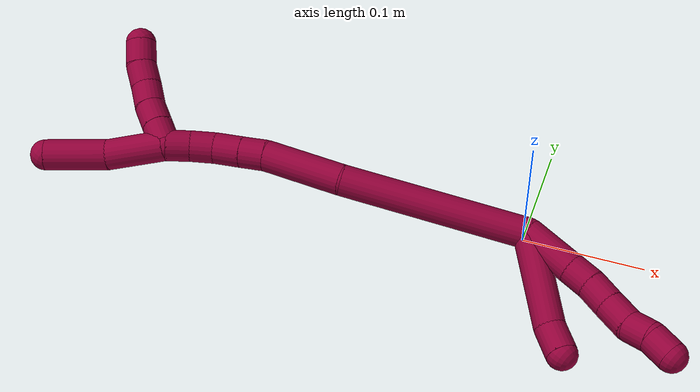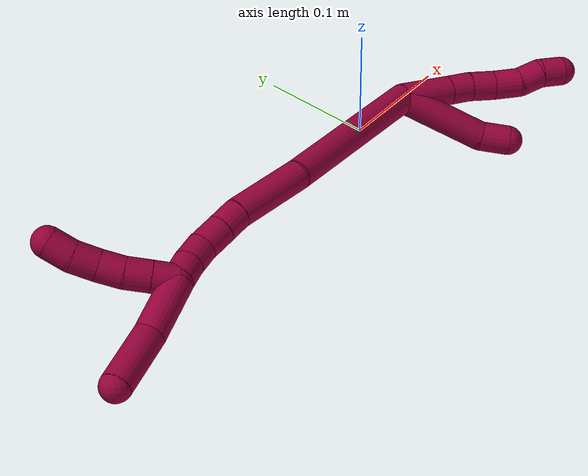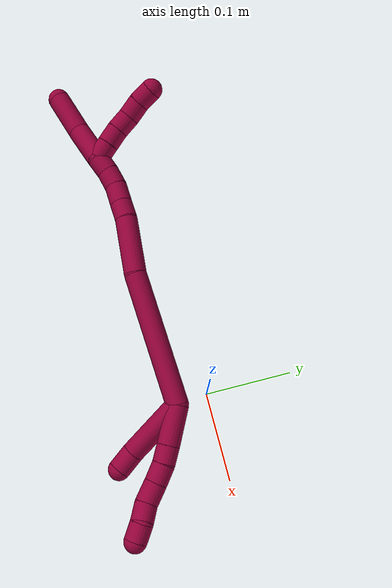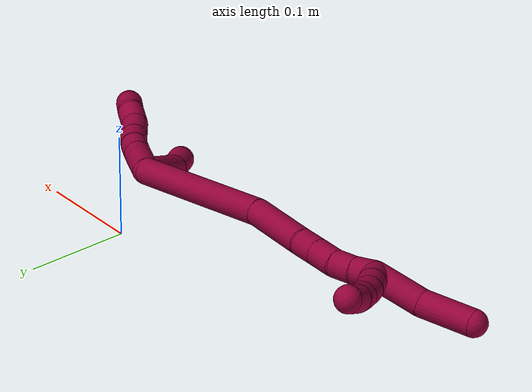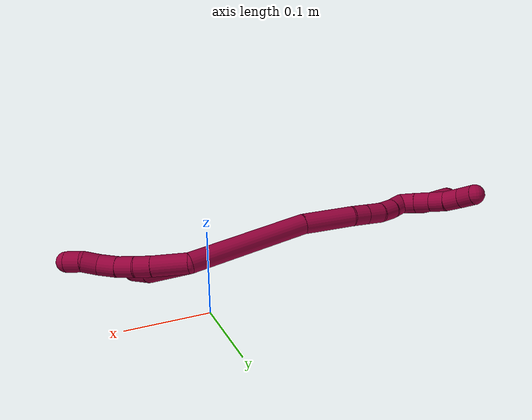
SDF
<sdf version="1.7">
 <world name="default">
  <model name="photoneo_s_sensor">
   <static>1</static>
   <pose>0 0 2 1.57079 1.57079 3.14159</pose>
   <link name="link">
    <inertial><mass>0.1</mass></inertial>
    <sensor name="sensor" type="depth">
     <update_rate>30</update_rate>
     <camera>
      <horizontal_fov>1.22</horizontal_fov>
      <image><width>1920</width><height>1200</height><format>B8G8R8</format></image>
      <clip><near>0.1</near><far>4</far></clip>
      <depth_camera><output>points</output></depth_camera>
     </camera>
     <plugin name="camera_plugin" filename="libgazebo_ros_depth_camera.so">
      <baseline>0.2</baseline>
      <alwaysOn>1</alwaysOn>
      <updateRate>0.0</updateRate>
      <cameraName>camera_ir</cameraName>
      <imageTopicName>/camera/color/image_raw</imageTopicName>
      <cameraInfoTopicName>/camera/color/camera_info</cameraInfoTopicName>
      <depthImageTopicName>/camera/depth/image_raw</depthImageTopicName>
      <depthImageCameraInfoTopicName>/camera/depth/camera_info</depthImageCameraInfoTopicName>
      <pointCloudTopicName>/camera/depth/points</pointCloudTopicName>
      <frameName>fr_optical</frameName>
      <pointCloudCutoff>0.1</pointCloudCutoff>
      <pointCloudCutoffMax>2.0</pointCloudCutoffMax>
      <distortionK1>0</distortionK1>
      <distortionK2>0</distortionK2>
      <distortionK3>0</distortionK3>
      <distortionT1>0</distortionT1>
      <distortionT2>0</distortionT2>
      <CxPrime>0</CxPrime>
      <Cx>0</Cx>
      <Cy>0</Cy>
      <focalLength>0</focalLength>
      <hackBaseline>0</hackBaseline>
     </plugin>
    </sensor>
   </link>
  </model>
  <model name="bin">
   <static>1</static>
   <link name="bottom">
    <collision name="collision-bottom">
     <pose>0 0 -0.01 0 -0 0</pose>
     <geometry><box><size>0.8 0.6 0.02</size></box></geometry>
     <surface>
      <friction><ode><mu>100</mu><mu2>100</mu2></ode></friction>
      <contact><collide_bitmask>65535</collide_bitmask></contact>
     </surface>
    </collision>
   </link>
   <link name="west_wall">
    <collision name="collision-west_wall">
     <pose>-0.41 0 0.1 0 -0 0</pose>
     <geometry><box><size>0.02 0.6 0.2</size></box></geometry>
     <surface>
      <friction><ode><mu>100</mu><mu2>100</mu2></ode></friction>
      <contact><collide_bitmask>65535</collide_bitmask></contact>
     </surface>
    </collision>
   </link>
   <link name="east_wall">
    <collision name="collision-east_wall">
     <pose>0.41 0 0.1 0 -0 0</pose>
     <geometry><box><size>0.02 0.6 0.2</size></box></geometry>
     <surface>
      <friction><ode><mu>100</mu><mu2>100</mu2></ode></friction>
      <contact><collide_bitmask>65535</collide_bitmask></contact>
     </surface>
    </collision>
   </link>
   <link name="south_wall">
    <collision name="collision-south_wall">
     <pose>0 -0.31 0.1 0 -0 0</pose>
     <geometry><box><size>0.8 0.02 0.2</size></box></geometry>
     <surface>
      <friction><ode><mu>100</mu><mu2>100</mu2></ode></friction>
      <contact><collide_bitmask>65535</collide_bitmask></contact>
     </surface>
    </collision>
   </link>
   <link name="north_wall">
    <collision name="collision-north_wall">
     <pose>0 0.31 0.1 0 -0 0</pose>
     <geometry><box><size>0.8 0.02 0.2</size></box></geometry>
     <surface>
      <friction><ode><mu>100</mu><mu2>100</mu2></ode></friction>
      <contact><collide_bitmask>65535</collide_bitmask></contact>
     </surface>
    </collision>
   </link>
  </model>
  <model name="8">
   <static>0</static>
   <link name="8">
    <collision name="collision-cylinder-e_1_2_8">
     <pose>6.5e-05 -0.000303 -0.02214 3.12789 0.002946 0.423393</pose>
     <geometry><cylinder><radius>0.0125</radius><length>0.044284</length></cylinder></geometry>
     <surface>
      <friction><ode><mu>1.16</mu><mu2>1.16</mu2><slip1>0</slip1><slip2>0</slip2></ode></friction>
      <contact><ode><kp>1e+06</kp><kd>1</kd><max_vel>0</max_vel><min_depth>0.001</min_depth></ode></contact>
     </surface>
    </collision>
    <visual name="visual-cylinder-e_1_2_8">
     <pose>6.5e-05 -0.000303 -0.02214 3.12789 0.002946 0.423393</pose>
     <geometry><cylinder><radius>0.0125</radius><length>0.044284</length></cylinder></geometry>
     <material><ambient>0.584314 0 0.227451 1</ambient></material>
    </visual>
    <collision name="collision-cylinder-e_2_8_9">
     <pose>-1.1e-05 -0.001203 -0.054267 3.08196 -0.014095 -0.464131</pose>
     <geometry><cylinder><radius>0.0125</radius><length>0.020012</length></cylinder></geometry>
     <surface>
      <friction><ode><mu>1.16</mu><mu2>1.16</mu2><slip1>0</slip1><slip2>0</slip2></ode></friction>
      <contact><ode><kp>1e+06</kp><kd>1</kd><max_vel>0</max_vel><min_depth>0.001</min_depth></ode></contact>
     </surface>
    </collision>
    <visual name="visual-cylinder-e_2_8_9">
     <pose>-1.1e-05 -0.001203 -0.054267 3.08196 -0.014095 -0.464131</pose>
     <geometry><cylinder><radius>0.0125</radius><length>0.020012</length></cylinder></geometry>
     <material><ambient>0.584314 0 0.227451 1</ambient></material>
    </visual>
    <collision name="collision-cylinder-e_3_9_10">
     <pose>-0.001975 -0.002429 -0.074928 3.08268 -0.168942 -2.47179</pose>
     <geometry><cylinder><radius>0.0125</radius><length>0.021694</length></cylinder></geometry>
     <surface>
      <friction><ode><mu>1.16</mu><mu2>1.16</mu2><slip1>0</slip1><slip2>0</slip2></ode></friction>
      <contact><ode><kp>1e+06</kp><kd>1</kd><max_vel>0</max_vel><min_depth>0.001</min_depth></ode></contact>
     </surface>
    </collision>
    <visual name="visual-cylinder-e_3_9_10">
     <pose>-0.001975 -0.002429 -0.074928 3.08268 -0.168942 -2.47179</pose>
     <geometry><cylinder><radius>0.0125</radius><length>0.021694</length></cylinder></geometry>
     <material><ambient>0.584314 0 0.227451 1</ambient></material>
    </visual>
    <collision name="collision-cylinder-e_4_10_11">
     <pose>-0.005921 -0.005032 -0.097124 2.97195 -0.179593 -1.62806</pose>
     <geometry><cylinder><radius>0.0125</radius><length>0.023761</length></cylinder></geometry>
     <surface>
      <friction><ode><mu>1.16</mu><mu2>1.16</mu2><slip1>0</slip1><slip2>0</slip2></ode></friction>
      <contact><ode><kp>1e+06</kp><kd>1</kd><max_vel>0</max_vel><min_depth>0.001</min_depth></ode></contact>
     </surface>
    </collision>
    <visual name="visual-cylinder-e_4_10_11">
     <pose>-0.005921 -0.005032 -0.097124 2.97195 -0.179593 -1.62806</pose>
     <geometry><cylinder><radius>0.0125</radius><length>0.023761</length></cylinder></geometry>
     <material><ambient>0.584314 0 0.227451 1</ambient></material>
    </visual>
    <collision name="collision-cylinder-e_5_11_12">
     <pose>-0.007237 -0.010106 -0.118229 2.82873 0.079916 0.496514</pose>
     <geometry><cylinder><radius>0.0125</radius><length>0.020211</length></cylinder></geometry>
     <surface>
      <friction><ode><mu>1.16</mu><mu2>1.16</mu2><slip1>0</slip1><slip2>0</slip2></ode></friction>
      <contact><ode><kp>1e+06</kp><kd>1</kd><max_vel>0</max_vel><min_depth>0.001</min_depth></ode></contact>
     </surface>
    </collision>
    <visual name="visual-cylinder-e_5_11_12">
     <pose>-0.007237 -0.010106 -0.118229 2.82873 0.079916 0.496514</pose>
     <geometry><cylinder><radius>0.0125</radius><length>0.020211</length></cylinder></geometry>
     <material><ambient>0.584314 0 0.227451 1</ambient></material>
    </visual>
    <collision name="collision-cylinder-e_6_12_6">
     <pose>-0.007421 -0.013765 -0.137768 3.08549 -0.099065 -2.11151</pose>
     <geometry><cylinder><radius>0.0125</radius><length>0.020038</length></cylinder></geometry>
     <surface>
      <friction><ode><mu>1.16</mu><mu2>1.16</mu2><slip1>0</slip1><slip2>0</slip2></ode></friction>
      <contact><ode><kp>1e+06</kp><kd>1</kd><max_vel>0</max_vel><min_depth>0.001</min_depth></ode></contact>
     </surface>
    </collision>
    <visual name="visual-cylinder-e_6_12_6">
     <pose>-0.007421 -0.013765 -0.137768 3.08549 -0.099065 -2.11151</pose>
     <geometry><cylinder><radius>0.0125</radius><length>0.020038</length></cylinder></geometry>
     <material><ambient>0.584314 0 0.227451 1</ambient></material>
    </visual>
    <collision name="collision-cylinder-e_1_2_13">
     <pose>-0.020732 0.007747 -0.03052 -2.89301 -0.582272 2.35154</pose>
     <geometry><cylinder><radius>0.0125</radius><length>0.0754</length></cylinder></geometry>
     <surface>
      <friction><ode><mu>1.16</mu><mu2>1.16</mu2><slip1>0</slip1><slip2>0</slip2></ode></friction>
      <contact><ode><kp>1e+06</kp><kd>1</kd><max_vel>0</max_vel><min_depth>0.001</min_depth></ode></contact>
     </surface>
    </collision>
    <visual name="visual-cylinder-e_1_2_13">
     <pose>-0.020732 0.007747 -0.03052 -2.89301 -0.582272 2.35154</pose>
     <geometry><cylinder><radius>0.0125</radius><length>0.0754</length></cylinder></geometry>
     <material><ambient>0.584314 0 0.227451 1</ambient></material>
    </visual>
    <collision name="collision-cylinder-e_2_13_5">
     <pose>-0.046882 0.014634 -0.072048 3.06359 -0.45611 -2.80847</pose>
     <geometry><cylinder><radius>0.0125</radius><length>0.0246</length></cylinder></geometry>
     <surface>
      <friction><ode><mu>1.16</mu><mu2>1.16</mu2><slip1>0</slip1><slip2>0</slip2></ode></friction>
      <contact><ode><kp>1e+06</kp><kd>1</kd><max_vel>0</max_vel><min_depth>0.001</min_depth></ode></contact>
     </surface>
    </collision>
    <visual name="visual-cylinder-e_2_13_5">
     <pose>-0.046882 0.014634 -0.072048 3.06359 -0.45611 -2.80847</pose>
     <geometry><cylinder><radius>0.0125</radius><length>0.0246</length></cylinder></geometry>
     <material><ambient>0.584314 0 0.227451 1</ambient></material>
    </visual>
    <collision name="collision-cylinder-e_1_2_14">
     <pose>-0.037244 -0.009616 0.06502 0.146829 -0.515528 -0.038773</pose>
     <geometry><cylinder><radius>0.0125</radius><length>0.151092</length></cylinder></geometry>
     <surface>
      <friction><ode><mu>1.16</mu><mu2>1.16</mu2><slip1>0</slip1><slip2>0</slip2></ode></friction>
      <contact><ode><kp>1e+06</kp><kd>1</kd><max_vel>0</max_vel><min_depth>0.001</min_depth></ode></contact>
     </surface>
    </collision>
    <visual name="visual-cylinder-e_1_2_14">
     <pose>-0.037244 -0.009616 0.06502 0.146829 -0.515528 -0.038773</pose>
     <geometry><cylinder><radius>0.0125</radius><length>0.151092</length></cylinder></geometry>
     <material><ambient>0.584314 0 0.227451 1</ambient></material>
    </visual>
    <collision name="collision-cylinder-e_2_14_15">
     <pose>-0.087453 -0.018808 0.160066 -0.014112 -0.407603 0.002917</pose>
     <geometry><cylinder><radius>0.0125</radius><length>0.065415</length></cylinder></geometry>
     <surface>
      <friction><ode><mu>1.16</mu><mu2>1.16</mu2><slip1>0</slip1><slip2>0</slip2></ode></friction>
      <contact><ode><kp>1e+06</kp><kd>1</kd><max_vel>0</max_vel><min_depth>0.001</min_depth></ode></contact>
     </surface>
    </collision>
    <visual name="visual-cylinder-e_2_14_15">
     <pose>-0.087453 -0.018808 0.160066 -0.014112 -0.407603 0.002917</pose>
     <geometry><cylinder><radius>0.0125</radius><length>0.065415</length></cylinder></geometry>
     <material><ambient>0.584314 0 0.227451 1</ambient></material>
    </visual>
    <collision name="collision-cylinder-e_3_15_16">
     <pose>-0.105812 -0.017708 0.198651 -0.078926 -0.560838 0.022742</pose>
     <geometry><cylinder><radius>0.0125</radius><length>0.02028</length></cylinder></geometry>
     <surface>
      <friction><ode><mu>1.16</mu><mu2>1.16</mu2><slip1>0</slip1><slip2>0</slip2></ode></friction>
      <contact><ode><kp>1e+06</kp><kd>1</kd><max_vel>0</max_vel><min_depth>0.001</min_depth></ode></contact>
     </surface>
    </collision>
    <visual name="visual-cylinder-e_3_15_16">
     <pose>-0.105812 -0.017708 0.198651 -0.078926 -0.560838 0.022742</pose>
     <geometry><cylinder><radius>0.0125</radius><length>0.02028</length></cylinder></geometry>
     <material><ambient>0.584314 0 0.227451 1</ambient></material>
    </visual>
    <collision name="collision-cylinder-e_4_16_17">
     <pose>-0.117142 -0.016241 0.216868 -0.081563 -0.549704 0.023011</pose>
     <geometry><cylinder><radius>0.0125</radius><length>0.022727</length></cylinder></geometry>
     <surface>
      <friction><ode><mu>1.16</mu><mu2>1.16</mu2><slip1>0</slip1><slip2>0</slip2></ode></friction>
      <contact><ode><kp>1e+06</kp><kd>1</kd><max_vel>0</max_vel><min_depth>0.001</min_depth></ode></contact>
     </surface>
    </collision>
    <visual name="visual-cylinder-e_4_16_17">
     <pose>-0.117142 -0.016241 0.216868 -0.081563 -0.549704 0.023011</pose>
     <geometry><cylinder><radius>0.0125</radius><length>0.022727</length></cylinder></geometry>
     <material><ambient>0.584314 0 0.227451 1</ambient></material>
    </visual>
    <collision name="collision-cylinder-e_5_17_18">
     <pose>-0.129696 -0.016075 0.234204 0.081 -0.709647 -0.030025</pose>
     <geometry><cylinder><radius>0.0125</radius><length>0.020311</length></cylinder></geometry>
     <surface>
      <friction><ode><mu>1.16</mu><mu2>1.16</mu2><slip1>0</slip1><slip2>0</slip2></ode></friction>
      <contact><ode><kp>1e+06</kp><kd>1</kd><max_vel>0</max_vel><min_depth>0.001</min_depth></ode></contact>
     </surface>
    </collision>
    <visual name="visual-cylinder-e_5_17_18">
     <pose>-0.129696 -0.016075 0.234204 0.081 -0.709647 -0.030025</pose>
     <geometry><cylinder><radius>0.0125</radius><length>0.020311</length></cylinder></geometry>
     <material><ambient>0.584314 0 0.227451 1</ambient></material>
    </visual>
    <collision name="collision-cylinder-e_6_18_1">
     <pose>-0.143687 -0.018267 0.248585 0.229841 -0.81974 -0.100219</pose>
     <geometry><cylinder><radius>0.0125</radius><length>0.020174</length></cylinder></geometry>
     <surface>
      <friction><ode><mu>1.16</mu><mu2>1.16</mu2><slip1>0</slip1><slip2>0</slip2></ode></friction>
      <contact><ode><kp>1e+06</kp><kd>1</kd><max_vel>0</max_vel><min_depth>0.001</min_depth></ode></contact>
     </surface>
    </collision>
    <visual name="visual-cylinder-e_6_18_1">
     <pose>-0.143687 -0.018267 0.248585 0.229841 -0.81974 -0.100219</pose>
     <geometry><cylinder><radius>0.0125</radius><length>0.020174</length></cylinder></geometry>
     <material><ambient>0.584314 0 0.227451 1</ambient></material>
    </visual>
    <collision name="collision-cylinder-e_1_1_19">
     <pose>-0.147233 -0.020043 0.264524 0.022479 0.392673 0.004471</pose>
     <geometry><cylinder><radius>0.0125</radius><length>0.02</length></cylinder></geometry>
     <surface>
      <friction><ode><mu>1.16</mu><mu2>1.16</mu2><slip1>0</slip1><slip2>0</slip2></ode></friction>
      <contact><ode><kp>1e+06</kp><kd>1</kd><max_vel>0</max_vel><min_depth>0.001</min_depth></ode></contact>
     </surface>
    </collision>
    <visual name="visual-cylinder-e_1_1_19">
     <pose>-0.147233 -0.020043 0.264524 0.022479 0.392673 0.004471</pose>
     <geometry><cylinder><radius>0.0125</radius><length>0.02</length></cylinder></geometry>
     <material><ambient>0.584314 0 0.227451 1</ambient></material>
    </visual>
    <collision name="collision-cylinder-e_2_19_20">
     <pose>-0.139589 -0.020266 0.283003 0.001714 0.391725 0.00034</pose>
     <geometry><cylinder><radius>0.0125</radius><length>0.02</length></cylinder></geometry>
     <surface>
      <friction><ode><mu>1.16</mu><mu2>1.16</mu2><slip1>0</slip1><slip2>0</slip2></ode></friction>
      <contact><ode><kp>1e+06</kp><kd>1</kd><max_vel>0</max_vel><min_depth>0.001</min_depth></ode></contact>
     </surface>
    </collision>
    <visual name="visual-cylinder-e_2_19_20">
     <pose>-0.139589 -0.020266 0.283003 0.001714 0.391725 0.00034</pose>
     <geometry><cylinder><radius>0.0125</radius><length>0.02</length></cylinder></geometry>
     <material><ambient>0.584314 0 0.227451 1</ambient></material>
    </visual>
    <collision name="collision-cylinder-e_3_20_21">
     <pose>-0.130634 -0.02061 0.300819 0.038246 0.53948 0.010575</pose>
     <geometry><cylinder><radius>0.0125</radius><length>0.02</length></cylinder></geometry>
     <surface>
      <friction><ode><mu>1.16</mu><mu2>1.16</mu2><slip1>0</slip1><slip2>0</slip2></ode></friction>
      <contact><ode><kp>1e+06</kp><kd>1</kd><max_vel>0</max_vel><min_depth>0.001</min_depth></ode></contact>
     </surface>
    </collision>
    <visual name="visual-cylinder-e_3_20_21">
     <pose>-0.130634 -0.02061 0.300819 0.038246 0.53948 0.010575</pose>
     <geometry><cylinder><radius>0.0125</radius><length>0.02</length></cylinder></geometry>
     <material><ambient>0.584314 0 0.227451 1</ambient></material>
    </visual>
    <collision name="collision-cylinder-e_4_21_22">
     <pose>-0.12073 -0.022735 0.317998 0.205802 0.496914 0.052385</pose>
     <geometry><cylinder><radius>0.0125</radius><length>0.02</length></cylinder></geometry>
     <surface>
      <friction><ode><mu>1.16</mu><mu2>1.16</mu2><slip1>0</slip1><slip2>0</slip2></ode></friction>
      <contact><ode><kp>1e+06</kp><kd>1</kd><max_vel>0</max_vel><min_depth>0.001</min_depth></ode></contact>
     </surface>
    </collision>
    <visual name="visual-cylinder-e_4_21_22">
     <pose>-0.12073 -0.022735 0.317998 0.205802 0.496914 0.052385</pose>
     <geometry><cylinder><radius>0.0125</radius><length>0.02</length></cylinder></geometry>
     <material><ambient>0.584314 0 0.227451 1</ambient></material>
    </visual>
    <collision name="collision-cylinder-e_5_22_4">
     <pose>-0.109532 -0.026675 0.333954 0.283818 0.698503 0.103967</pose>
     <geometry><cylinder><radius>0.0125</radius><length>0.02</length></cylinder></geometry>
     <surface>
      <friction><ode><mu>1.16</mu><mu2>1.16</mu2><slip1>0</slip1><slip2>0</slip2></ode></friction>
      <contact><ode><kp>1e+06</kp><kd>1</kd><max_vel>0</max_vel><min_depth>0.001</min_depth></ode></contact>
     </surface>
    </collision>
    <visual name="visual-cylinder-e_5_22_4">
     <pose>-0.109532 -0.026675 0.333954 0.283818 0.698503 0.103967</pose>
     <geometry><cylinder><radius>0.0125</radius><length>0.02</length></cylinder></geometry>
     <material><ambient>0.584314 0 0.227451 1</ambient></material>
    </visual>
    <collision name="collision-cylinder-e_1_1_23">
     <pose>-0.168828 -0.015435 0.271384 -0.266816 -0.816754 0.116011</pose>
     <geometry><cylinder><radius>0.0125</radius><length>0.04875</length></cylinder></geometry>
     <surface>
      <friction><ode><mu>1.16</mu><mu2>1.16</mu2><slip1>0</slip1><slip2>0</slip2></ode></friction>
      <contact><ode><kp>1e+06</kp><kd>1</kd><max_vel>0</max_vel><min_depth>0.001</min_depth></ode></contact>
     </surface>
    </collision>
    <visual name="visual-cylinder-e_1_1_23">
     <pose>-0.168828 -0.015435 0.271384 -0.266816 -0.816754 0.116011</pose>
     <geometry><cylinder><radius>0.0125</radius><length>0.04875</length></cylinder></geometry>
     <material><ambient>0.584314 0 0.227451 1</ambient></material>
    </visual>
    <collision name="collision-cylinder-e_2_23_3">
     <pose>-0.204623 -0.011514 0.305685 0.026265 -0.780359 -0.010802</pose>
     <geometry><cylinder><radius>0.0125</radius><length>0.05125</length></cylinder></geometry>
     <surface>
      <friction><ode><mu>1.16</mu><mu2>1.16</mu2><slip1>0</slip1><slip2>0</slip2></ode></friction>
      <contact><ode><kp>1e+06</kp><kd>1</kd><max_vel>0</max_vel><min_depth>0.001</min_depth></ode></contact>
     </surface>
    </collision>
    <visual name="visual-cylinder-e_2_23_3">
     <pose>-0.204623 -0.011514 0.305685 0.026265 -0.780359 -0.010802</pose>
     <geometry><cylinder><radius>0.0125</radius><length>0.05125</length></cylinder></geometry>
     <material><ambient>0.584314 0 0.227451 1</ambient></material>
    </visual>
    <collision name="collision-sphere-3">
     <pose>-0.222651 -0.011992 0.323889 0 -0 0</pose>
     <geometry><sphere><radius>0.0125</radius></sphere></geometry>
     <surface>
      <friction><ode><mu>1.16</mu><mu2>1.16</mu2><slip1>0</slip1><slip2>0</slip2></ode></friction>
      <contact><ode><kp>1e+06</kp><kd>1</kd><max_vel>0</max_vel><min_depth>0.001</min_depth></ode></contact>
     </surface>
    </collision>
    <visual name="visual-sphere-3">
     <pose>-0.222651 -0.011992 0.323889 0 -0 0</pose>
     <geometry><sphere><radius>0.0125</radius></sphere></geometry>
     <material><ambient>0.584314 0 0.227451 1</ambient></material>
    </visual>
    <collision name="collision-sphere-23">
     <pose>-0.186595 -0.011036 0.28748 0 -0 0</pose>
     <geometry><sphere><radius>0.0125</radius></sphere></geometry>
     <surface>
      <friction><ode><mu>1.16</mu><mu2>1.16</mu2><slip1>0</slip1><slip2>0</slip2></ode></friction>
      <contact><ode><kp>1e+06</kp><kd>1</kd><max_vel>0</max_vel><min_depth>0.001</min_depth></ode></contact>
     </surface>
    </collision>
    <visual name="visual-sphere-23">
     <pose>-0.186595 -0.011036 0.28748 0 -0 0</pose>
     <geometry><sphere><radius>0.0125</radius></sphere></geometry>
     <material><ambient>0.584314 0 0.227451 1</ambient></material>
    </visual>
    <collision name="collision-sphere-4">
     <pose>-0.103102 -0.02882 0.341306 0 -0 0</pose>
     <geometry><sphere><radius>0.0125</radius></sphere></geometry>
     <surface>
      <friction><ode><mu>1.16</mu><mu2>1.16</mu2><slip1>0</slip1><slip2>0</slip2></ode></friction>
      <contact><ode><kp>1e+06</kp><kd>1</kd><max_vel>0</max_vel><min_depth>0.001</min_depth></ode></contact>
     </surface>
    </collision>
    <visual name="visual-sphere-4">
     <pose>-0.103102 -0.02882 0.341306 0 -0 0</pose>
     <geometry><sphere><radius>0.0125</radius></sphere></geometry>
     <material><ambient>0.584314 0 0.227451 1</ambient></material>
    </visual>
    <collision name="collision-sphere-22">
     <pose>-0.115963 -0.024531 0.326603 0 -0 0</pose>
     <geometry><sphere><radius>0.0125</radius></sphere></geometry>
     <surface>
      <friction><ode><mu>1.16</mu><mu2>1.16</mu2><slip1>0</slip1><slip2>0</slip2></ode></friction>
      <contact><ode><kp>1e+06</kp><kd>1</kd><max_vel>0</max_vel><min_depth>0.001</min_depth></ode></contact>
     </surface>
    </collision>
    <visual name="visual-sphere-22">
     <pose>-0.115963 -0.024531 0.326603 0 -0 0</pose>
     <geometry><sphere><radius>0.0125</radius></sphere></geometry>
     <material><ambient>0.584314 0 0.227451 1</ambient></material>
    </visual>
    <collision name="collision-sphere-21">
     <pose>-0.125497 -0.020938 0.309393 0 -0 0</pose>
     <geometry><sphere><radius>0.0125</radius></sphere></geometry>
     <surface>
      <friction><ode><mu>1.16</mu><mu2>1.16</mu2><slip1>0</slip1><slip2>0</slip2></ode></friction>
      <contact><ode><kp>1e+06</kp><kd>1</kd><max_vel>0</max_vel><min_depth>0.001</min_depth></ode></contact>
     </surface>
    </collision>
    <visual name="visual-sphere-21">
     <pose>-0.125497 -0.020938 0.309393 0 -0 0</pose>
     <geometry><sphere><radius>0.0125</radius></sphere></geometry>
     <material><ambient>0.584314 0 0.227451 1</ambient></material>
    </visual>
    <collision name="collision-sphere-20">
     <pose>-0.135771 -0.020282 0.292246 0 -0 0</pose>
     <geometry><sphere><radius>0.0125</radius></sphere></geometry>
     <surface>
      <friction><ode><mu>1.16</mu><mu2>1.16</mu2><slip1>0</slip1><slip2>0</slip2></ode></friction>
      <contact><ode><kp>1e+06</kp><kd>1</kd><max_vel>0</max_vel><min_depth>0.001</min_depth></ode></contact>
     </surface>
    </collision>
    <visual name="visual-sphere-20">
     <pose>-0.135771 -0.020282 0.292246 0 -0 0</pose>
     <geometry><sphere><radius>0.0125</radius></sphere></geometry>
     <material><ambient>0.584314 0 0.227451 1</ambient></material>
    </visual>
    <collision name="collision-sphere-12">
     <pose>-0.00643 -0.013206 -0.127814 0 -0 0</pose>
     <geometry><sphere><radius>0.0125</radius></sphere></geometry>
     <surface>
      <friction><ode><mu>1.16</mu><mu2>1.16</mu2><slip1>0</slip1><slip2>0</slip2></ode></friction>
      <contact><ode><kp>1e+06</kp><kd>1</kd><max_vel>0</max_vel><min_depth>0.001</min_depth></ode></contact>
     </surface>
    </collision>
    <visual name="visual-sphere-12">
     <pose>-0.00643 -0.013206 -0.127814 0 -0 0</pose>
     <geometry><sphere><radius>0.0125</radius></sphere></geometry>
     <material><ambient>0.584314 0 0.227451 1</ambient></material>
    </visual>
    <collision name="collision-sphere-11">
     <pose>-0.008044 -0.007006 -0.108645 0 -0 0</pose>
     <geometry><sphere><radius>0.0125</radius></sphere></geometry>
     <surface>
      <friction><ode><mu>1.16</mu><mu2>1.16</mu2><slip1>0</slip1><slip2>0</slip2></ode></friction>
      <contact><ode><kp>1e+06</kp><kd>1</kd><max_vel>0</max_vel><min_depth>0.001</min_depth></ode></contact>
     </surface>
    </collision>
    <visual name="visual-sphere-11">
     <pose>-0.008044 -0.007006 -0.108645 0 -0 0</pose>
     <geometry><sphere><radius>0.0125</radius></sphere></geometry>
     <material><ambient>0.584314 0 0.227451 1</ambient></material>
    </visual>
    <collision name="collision-sphere-10">
     <pose>-0.003799 -0.003059 -0.085602 0 -0 0</pose>
     <geometry><sphere><radius>0.0125</radius></sphere></geometry>
     <surface>
      <friction><ode><mu>1.16</mu><mu2>1.16</mu2><slip1>0</slip1><slip2>0</slip2></ode></friction>
      <contact><ode><kp>1e+06</kp><kd>1</kd><max_vel>0</max_vel><min_depth>0.001</min_depth></ode></contact>
     </surface>
    </collision>
    <visual name="visual-sphere-10">
     <pose>-0.003799 -0.003059 -0.085602 0 -0 0</pose>
     <geometry><sphere><radius>0.0125</radius></sphere></geometry>
     <material><ambient>0.584314 0 0.227451 1</ambient></material>
    </visual>
    <collision name="collision-sphere-9">
     <pose>-0.000152 -0.001799 -0.064254 0 -0 0</pose>
     <geometry><sphere><radius>0.0125</radius></sphere></geometry>
     <surface>
      <friction><ode><mu>1.16</mu><mu2>1.16</mu2><slip1>0</slip1><slip2>0</slip2></ode></friction>
      <contact><ode><kp>1e+06</kp><kd>1</kd><max_vel>0</max_vel><min_depth>0.001</min_depth></ode></contact>
     </surface>
    </collision>
    <visual name="visual-sphere-9">
     <pose>-0.000152 -0.001799 -0.064254 0 -0 0</pose>
     <geometry><sphere><radius>0.0125</radius></sphere></geometry>
     <material><ambient>0.584314 0 0.227451 1</ambient></material>
    </visual>
    <collision name="collision-sphere-2">
     <geometry><sphere><radius>0.0125</radius></sphere></geometry>
     <surface>
      <friction><ode><mu>1.16</mu><mu2>1.16</mu2><slip1>0</slip1><slip2>0</slip2></ode></friction>
      <contact><ode><kp>1e+06</kp><kd>1</kd><max_vel>0</max_vel><min_depth>0.001</min_depth></ode></contact>
     </surface>
    </collision>
    <visual name="visual-sphere-2">
     <geometry><sphere><radius>0.0125</radius></sphere></geometry>
     <material><ambient>0.584314 0 0.227451 1</ambient></material>
    </visual>
    <collision name="collision-sphere-19">
     <pose>-0.143407 -0.02025 0.273761 0 -0 0</pose>
     <geometry><sphere><radius>0.0125</radius></sphere></geometry>
     <surface>
      <friction><ode><mu>1.16</mu><mu2>1.16</mu2><slip1>0</slip1><slip2>0</slip2></ode></friction>
      <contact><ode><kp>1e+06</kp><kd>1</kd><max_vel>0</max_vel><min_depth>0.001</min_depth></ode></contact>
     </surface>
    </collision>
    <visual name="visual-sphere-19">
     <pose>-0.143407 -0.02025 0.273761 0 -0 0</pose>
     <geometry><sphere><radius>0.0125</radius></sphere></geometry>
     <material><ambient>0.584314 0 0.227451 1</ambient></material>
    </visual>
    <collision name="collision-sphere-8">
     <pose>0.00013 -0.000607 -0.04428 0 -0 0</pose>
     <geometry><sphere><radius>0.0125</radius></sphere></geometry>
     <surface>
      <friction><ode><mu>1.16</mu><mu2>1.16</mu2><slip1>0</slip1><slip2>0</slip2></ode></friction>
      <contact><ode><kp>1e+06</kp><kd>1</kd><max_vel>0</max_vel><min_depth>0.001</min_depth></ode></contact>
     </surface>
    </collision>
    <visual name="visual-sphere-8">
     <pose>0.00013 -0.000607 -0.04428 0 -0 0</pose>
     <geometry><sphere><radius>0.0125</radius></sphere></geometry>
     <material><ambient>0.584314 0 0.227451 1</ambient></material>
    </visual>
    <collision name="collision-sphere-6">
     <pose>-0.008412 -0.014324 -0.147722 0 -0 0</pose>
     <geometry><sphere><radius>0.0125</radius></sphere></geometry>
     <surface>
      <friction><ode><mu>1.16</mu><mu2>1.16</mu2><slip1>0</slip1><slip2>0</slip2></ode></friction>
      <contact><ode><kp>1e+06</kp><kd>1</kd><max_vel>0</max_vel><min_depth>0.001</min_depth></ode></contact>
     </surface>
    </collision>
    <visual name="visual-sphere-6">
     <pose>-0.008412 -0.014324 -0.147722 0 -0 0</pose>
     <geometry><sphere><radius>0.0125</radius></sphere></geometry>
     <material><ambient>0.584314 0 0.227451 1</ambient></material>
    </visual>
    <collision name="collision-sphere-13">
     <pose>-0.041464 0.015494 -0.061039 0 -0 0</pose>
     <geometry><sphere><radius>0.0125</radius></sphere></geometry>
     <surface>
      <friction><ode><mu>1.16</mu><mu2>1.16</mu2><slip1>0</slip1><slip2>0</slip2></ode></friction>
      <contact><ode><kp>1e+06</kp><kd>1</kd><max_vel>0</max_vel><min_depth>0.001</min_depth></ode></contact>
     </surface>
    </collision>
    <visual name="visual-sphere-13">
     <pose>-0.041464 0.015494 -0.061039 0 -0 0</pose>
     <geometry><sphere><radius>0.0125</radius></sphere></geometry>
     <material><ambient>0.584314 0 0.227451 1</ambient></material>
    </visual>
    <collision name="collision-sphere-5">
     <pose>-0.052299 0.013773 -0.083058 0 -0 0</pose>
     <geometry><sphere><radius>0.0125</radius></sphere></geometry>
     <surface>
      <friction><ode><mu>1.16</mu><mu2>1.16</mu2><slip1>0</slip1><slip2>0</slip2></ode></friction>
      <contact><ode><kp>1e+06</kp><kd>1</kd><max_vel>0</max_vel><min_depth>0.001</min_depth></ode></contact>
     </surface>
    </collision>
    <visual name="visual-sphere-5">
     <pose>-0.052299 0.013773 -0.083058 0 -0 0</pose>
     <geometry><sphere><radius>0.0125</radius></sphere></geometry>
     <material><ambient>0.584314 0 0.227451 1</ambient></material>
    </visual>
    <collision name="collision-sphere-14">
     <pose>-0.074488 -0.019232 0.130041 0 -0 0</pose>
     <geometry><sphere><radius>0.0125</radius></sphere></geometry>
     <surface>
      <friction><ode><mu>1.16</mu><mu2>1.16</mu2><slip1>0</slip1><slip2>0</slip2></ode></friction>
      <contact><ode><kp>1e+06</kp><kd>1</kd><max_vel>0</max_vel><min_depth>0.001</min_depth></ode></contact>
     </surface>
    </collision>
    <visual name="visual-sphere-14">
     <pose>-0.074488 -0.019232 0.130041 0 -0 0</pose>
     <geometry><sphere><radius>0.0125</radius></sphere></geometry>
     <material><ambient>0.584314 0 0.227451 1</ambient></material>
    </visual>
    <collision name="collision-sphere-15">
     <pose>-0.100419 -0.018385 0.190091 0 -0 0</pose>
     <geometry><sphere><radius>0.0125</radius></sphere></geometry>
     <surface>
      <friction><ode><mu>1.16</mu><mu2>1.16</mu2><slip1>0</slip1><slip2>0</slip2></ode></friction>
      <contact><ode><kp>1e+06</kp><kd>1</kd><max_vel>0</max_vel><min_depth>0.001</min_depth></ode></contact>
     </surface>
    </collision>
    <visual name="visual-sphere-15">
     <pose>-0.100419 -0.018385 0.190091 0 -0 0</pose>
     <geometry><sphere><radius>0.0125</radius></sphere></geometry>
     <material><ambient>0.584314 0 0.227451 1</ambient></material>
    </visual>
    <collision name="collision-sphere-16">
     <pose>-0.111206 -0.017031 0.207211 0 -0 0</pose>
     <geometry><sphere><radius>0.0125</radius></sphere></geometry>
     <surface>
      <friction><ode><mu>1.16</mu><mu2>1.16</mu2><slip1>0</slip1><slip2>0</slip2></ode></friction>
      <contact><ode><kp>1e+06</kp><kd>1</kd><max_vel>0</max_vel><min_depth>0.001</min_depth></ode></contact>
     </surface>
    </collision>
    <visual name="visual-sphere-16">
     <pose>-0.111206 -0.017031 0.207211 0 -0 0</pose>
     <geometry><sphere><radius>0.0125</radius></sphere></geometry>
     <material><ambient>0.584314 0 0.227451 1</ambient></material>
    </visual>
    <collision name="collision-sphere-17">
     <pose>-0.123079 -0.015452 0.226525 0 -0 0</pose>
     <geometry><sphere><radius>0.0125</radius></sphere></geometry>
     <surface>
      <friction><ode><mu>1.16</mu><mu2>1.16</mu2><slip1>0</slip1><slip2>0</slip2></ode></friction>
      <contact><ode><kp>1e+06</kp><kd>1</kd><max_vel>0</max_vel><min_depth>0.001</min_depth></ode></contact>
     </surface>
    </collision>
    <visual name="visual-sphere-17">
     <pose>-0.123079 -0.015452 0.226525 0 -0 0</pose>
     <geometry><sphere><radius>0.0125</radius></sphere></geometry>
     <material><ambient>0.584314 0 0.227451 1</ambient></material>
    </visual>
    <collision name="collision-sphere-18">
     <pose>-0.136313 -0.016699 0.241882 0 -0 0</pose>
     <geometry><sphere><radius>0.0125</radius></sphere></geometry>
     <surface>
      <friction><ode><mu>1.16</mu><mu2>1.16</mu2><slip1>0</slip1><slip2>0</slip2></ode></friction>
      <contact><ode><kp>1e+06</kp><kd>1</kd><max_vel>0</max_vel><min_depth>0.001</min_depth></ode></contact>
     </surface>
    </collision>
    <visual name="visual-sphere-18">
     <pose>-0.136313 -0.016699 0.241882 0 -0 0</pose>
     <geometry><sphere><radius>0.0125</radius></sphere></geometry>
     <material><ambient>0.584314 0 0.227451 1</ambient></material>
    </visual>
    <collision name="collision-sphere-1">
     <pose>-0.15106 -0.019835 0.255287 0 -0 0</pose>
     <geometry><sphere><radius>0.0125</radius></sphere></geometry>
     <surface>
      <friction><ode><mu>1.16</mu><mu2>1.16</mu2><slip1>0</slip1><slip2>0</slip2></ode></friction>
      <contact><ode><kp>1e+06</kp><kd>1</kd><max_vel>0</max_vel><min_depth>0.001</min_depth></ode></contact>
     </surface>
    </collision>
    <visual name="visual-sphere-1">
     <pose>-0.15106 -0.019835 0.255287 0 -0 0</pose>
     <geometry><sphere><radius>0.0125</radius></sphere></geometry>
     <material><ambient>0.584314 0 0.227451 1</ambient></material>
    </visual>
    <inertial>
     <pose>-0.075404 -0.009869 0.110271 0 -0 0</pose>
     <mass>0.75</mass>
     <inertia>
      <ixx>0.000286</ixx>
      <ixy>0</ixy>
      <ixz>0</ixz>
      <iyy>0.00039</iyy>
      <iyz>0</iyz>
      <izz>0.000239</izz>
     </inertia>
    </inertial>
   </link>
   <pose>0.010074 -0.037196 0.048391 -1.43261 -0.226064 1.06438</pose>
  </model>
 </world>
</sdf>
